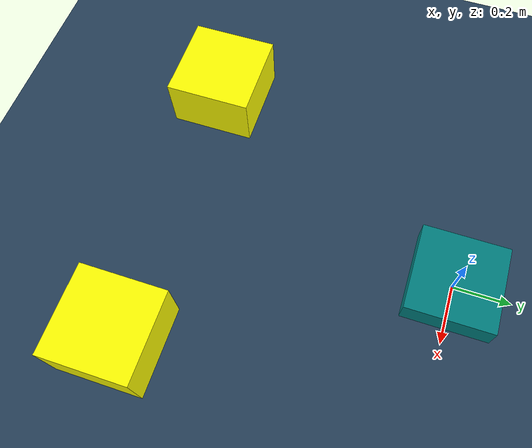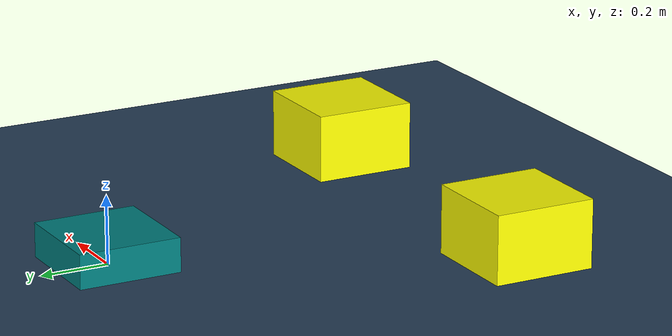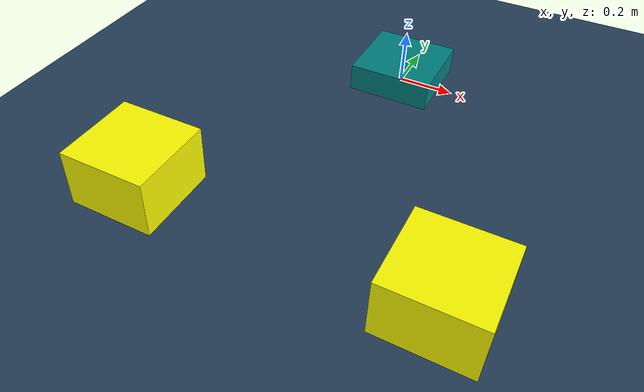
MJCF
<mujoco model="simple_robot">
  <!-- 设置角度单位为弧度 -->
  <compiler angle="radian"/>
  <asset>
    <!-- 天空纹理 -->
    <texture type="skybox" builtin="gradient" rgb1="0.3 0.5 0.7" rgb2="0 0 0" width="512" height="3072"/>
    <!-- 地面纹理及材质 -->
    <texture type="2d" name="groundplane" builtin="checker" mark="edge" rgb1="0.2 0.3 0.4" rgb2="0.1 0.2 0.3" markrgb="0.8 0.8 0.8" width="300" height="300"/>
    <material name="groundplane" texture="groundplane" texuniform="true" texrepeat="5 5" reflectance="0.2"/>
  </asset>
  <worldbody>
    <!-- 灯光 -->
    <light pos="0 0 1.5" dir="0 0 -1" type="directional"/>
    <!-- 地面 -->
    <geom name="floor" size="0 0 0.05" type="plane" material="groundplane"/>

    <!-- 被观察物体 -->
    <body name="box" pos="0 0 0.05">
      <freejoint/>
      <geom type="box" size="0.15 0.15 0.05" rgba="0 0.5 0.5 1"/>
    </body>

    <body name="camera_bracket1" pos="0.5 -1 0.1">
      <freejoint/>
      <geom type="box" size="0.15 0.15 0.1" rgba="1 1 0 1"/>
      <camera name="test_camera1" mode="fixed" pos="0 0 0.7" euler="0.7 0 0" fovy="80" resolution="1920 1080"/>
    </body>

    <body name="camera_bracket2" pos="-0.5 -1 0.1">
      <freejoint/>
      <geom type="box" size="0.15 0.15 0.1" rgba="1 1 0 1"/>
      <camera name="test_camera2" mode="targetbody" target="box" pos="0 0 0.7" euler="0.7 0 0" fovy="51"/>
    </body>
  </worldbody>
</mujoco>
